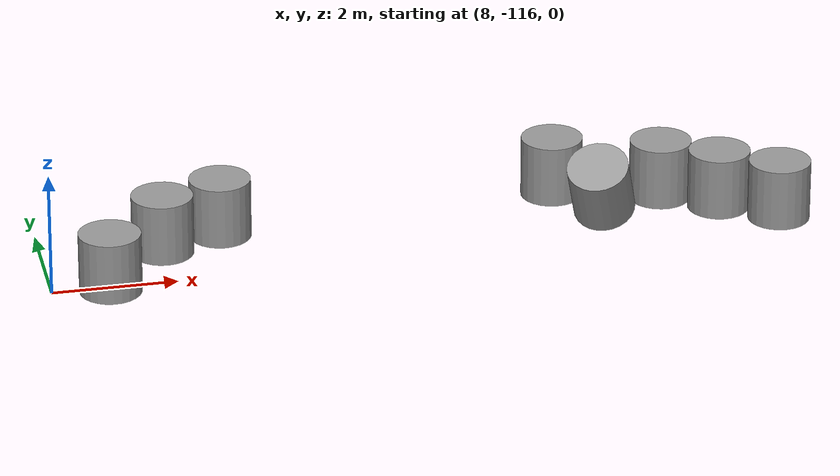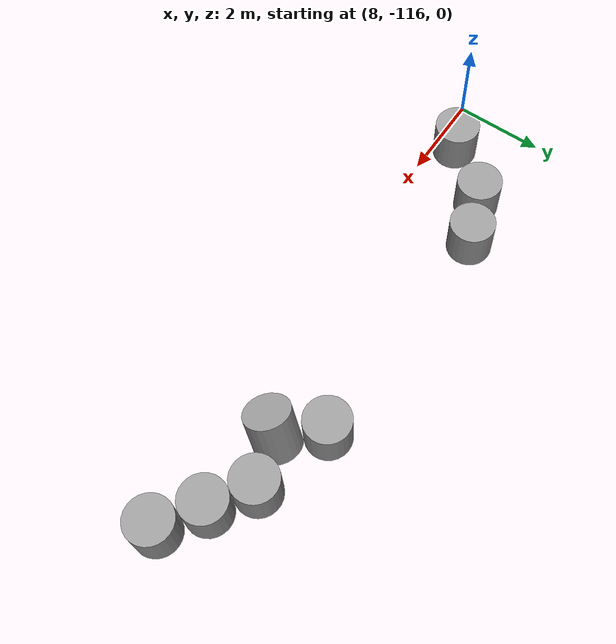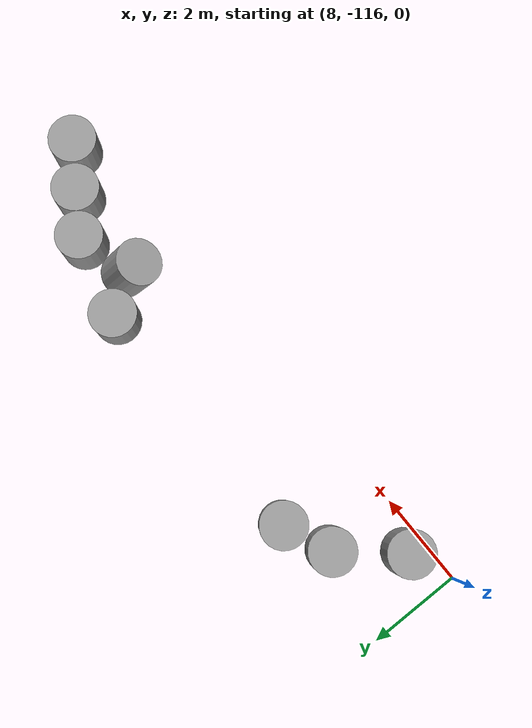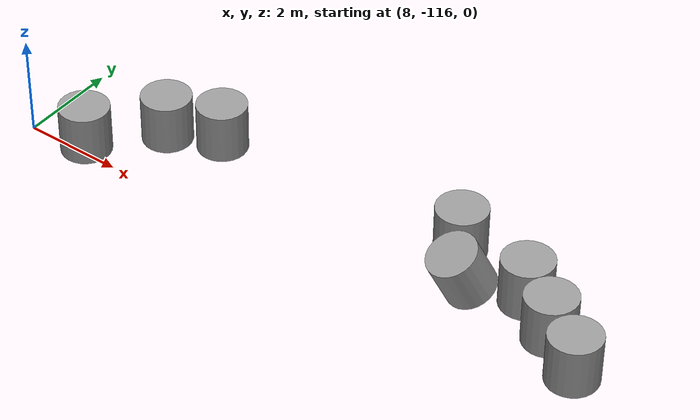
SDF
<sdf version="1.7">
 <world name="default">
  <model name="unit_cylinder_85_clone_244_clone_1045">
   <pose>19.8342 -115.542 0.451313 3.4e-05 -1.9e-05 0.015196</pose>
   <link name="link">
    <inertial>
     <mass>1</mass>
     <inertia><ixx>0.145833</ixx><ixy>0</ixy><ixz>0</ixz><iyy>0.145833</iyy><iyz>0</iyz><izz>0.125</izz></inertia>
    </inertial>
    <collision name="collision">
     <geometry><cylinder><radius>0.5</radius><length>1</length></cylinder></geometry>
    </collision>
    <visual name="visual">
     <geometry><cylinder><radius>0.5</radius><length>1</length></cylinder></geometry>
     <material>
      <script><name>Gazebo/Grey</name><uri>file://media/materials/scripts/gazebo.material</uri></script>
     </material>
    </visual>
   </link>
  </model>
  <model name="unit_cylinder_85_clone_244_clone_1051">
   <pose>18.9841 -114.964 0.451317 2.6e-05 -1.2e-05 -0.062202</pose>
   <link name="link">
    <inertial>
     <mass>1</mass>
     <inertia><ixx>0.145833</ixx><ixy>0</ixy><ixz>0</ixz><iyy>0.145833</iyy><iyz>0</iyz><izz>0.125</izz></inertia>
    </inertial>
    <collision name="collision">
     <geometry><cylinder><radius>0.5</radius><length>1</length></cylinder></geometry>
    </collision>
    <visual name="visual">
     <geometry><cylinder><radius>0.5</radius><length>1</length></cylinder></geometry>
     <material>
      <script><name>Gazebo/Grey</name><uri>file://media/materials/scripts/gazebo.material</uri></script>
     </material>
    </visual>
   </link>
  </model>
  <model name="unit_cylinder_85_clone_244_clone_1052">
   <pose>18.1469 -114.414 0.451319 2.4e-05 -1.8e-05 0.095849</pose>
   <link name="link">
    <inertial>
     <mass>1</mass>
     <inertia><ixx>0.145833</ixx><ixy>0</ixy><ixz>0</ixz><iyy>0.145833</iyy><iyz>0</iyz><izz>0.125</izz></inertia>
    </inertial>
    <collision name="collision">
     <geometry><cylinder><radius>0.5</radius><length>1</length></cylinder></geometry>
    </collision>
    <visual name="visual">
     <geometry><cylinder><radius>0.5</radius><length>1</length></cylinder></geometry>
     <material>
      <script><name>Gazebo/Grey</name><uri>file://media/materials/scripts/gazebo.material</uri></script>
     </material>
    </visual>
   </link>
  </model>
  <model name="unit_cylinder_85_clone_244_clone_1053">
   <pose>17.0631 -114.846 0.417236 0.389277 -0.227626 -0.014253</pose>
   <link name="link">
    <inertial>
     <mass>1</mass>
     <inertia><ixx>0.145833</ixx><ixy>0</ixy><ixz>0</ixz><iyy>0.145833</iyy><iyz>0</iyz><izz>0.125</izz></inertia>
    </inertial>
    <collision name="collision">
     <geometry><cylinder><radius>0.5</radius><length>1</length></cylinder></geometry>
    </collision>
    <visual name="visual">
     <geometry><cylinder><radius>0.5</radius><length>1</length></cylinder></geometry>
     <material>
      <script><name>Gazebo/Grey</name><uri>file://media/materials/scripts/gazebo.material</uri></script>
     </material>
    </visual>
   </link>
  </model>
  <model name="unit_cylinder_85_clone_244_clone_1054">
   <pose>16.4497 -113.959 0.451304 3.6e-05 -1.7e-05 -0.038596</pose>
   <link name="link">
    <inertial>
     <mass>1</mass>
     <inertia><ixx>0.145833</ixx><ixy>0</ixy><ixz>0</ixz><iyy>0.145833</iyy><iyz>0</iyz><izz>0.125</izz></inertia>
    </inertial>
    <collision name="collision">
     <geometry><cylinder><radius>0.5</radius><length>1</length></cylinder></geometry>
    </collision>
    <visual name="visual">
     <geometry><cylinder><radius>0.5</radius><length>1</length></cylinder></geometry>
     <material>
      <script><name>Gazebo/Grey</name><uri>file://media/materials/scripts/gazebo.material</uri></script>
     </material>
    </visual>
   </link>
  </model>
  <model name="unit_cylinder_85_clone_244_clone_1061">
   <pose>11.0021 -113.991 0.250003 5e-06 -2e-06 8.7e-05</pose>
   <link name="link">
    <inertial>
     <mass>1</mass>
     <inertia><ixx>0.145833</ixx><ixy>0</ixy><ixz>0</ixz><iyy>0.145833</iyy><iyz>0</iyz><izz>0.125</izz></inertia>
    </inertial>
    <collision name="collision">
     <geometry><cylinder><radius>0.5</radius><length>1</length></cylinder></geometry>
    </collision>
    <visual name="visual">
     <geometry><cylinder><radius>0.5</radius><length>1</length></cylinder></geometry>
     <material>
      <script><name>Gazebo/Grey</name><uri>file://media/materials/scripts/gazebo.material</uri></script>
     </material>
    </visual>
   </link>
  </model>
  <model name="unit_cylinder_85_clone_244_clone_1063">
   <pose>10 -114.419 0.249999 -3e-06 3e-06 0.000509</pose>
   <link name="link">
    <inertial>
     <mass>1</mass>
     <inertia><ixx>0.145833</ixx><ixy>0</ixy><ixz>0</ixz><iyy>0.145833</iyy><iyz>0</iyz><izz>0.125</izz></inertia>
    </inertial>
    <collision name="collision">
     <geometry><cylinder><radius>0.5</radius><length>1</length></cylinder></geometry>
    </collision>
    <visual name="visual">
     <geometry><cylinder><radius>0.5</radius><length>1</length></cylinder></geometry>
     <material>
      <script><name>Gazebo/Grey</name><uri>file://media/materials/scripts/gazebo.material</uri></script>
     </material>
    </visual>
   </link>
  </model>
  <model name="unit_cylinder_85_clone_244_clone_1064">
   <pose>8.98127 -115.61 0.24999 0 0 -0.045051</pose>
   <link name="link">
    <inertial>
     <mass>1</mass>
     <inertia><ixx>0.145833</ixx><ixy>0</ixy><ixz>0</ixz><iyy>0.145833</iyy><iyz>0</iyz><izz>0.125</izz></inertia>
    </inertial>
    <collision name="collision">
     <geometry><cylinder><radius>0.5</radius><length>1</length></cylinder></geometry>
    </collision>
    <visual name="visual">
     <geometry><cylinder><radius>0.5</radius><length>1</length></cylinder></geometry>
     <material>
      <script><name>Gazebo/Grey</name><uri>file://media/materials/scripts/gazebo.material</uri></script>
     </material>
    </visual>
   </link>
  </model>
 </world>
</sdf>
